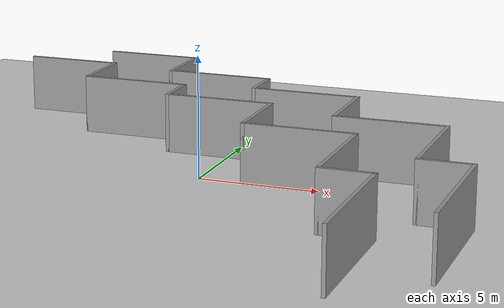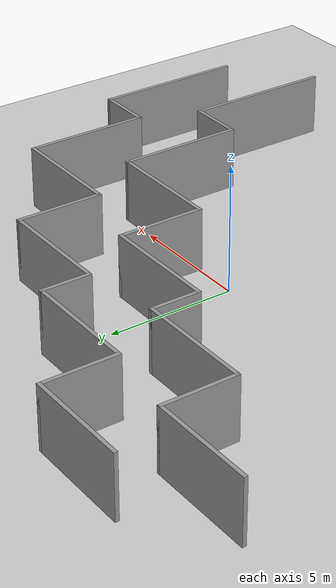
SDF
<sdf version="1.7">
 <world name="default">
  <plugin name="gazebo_ros_state" filename="libgazebo_ros_state.so">
   <ros><namespace>/test</namespace><argument>model_states:=model_states_demo</argument></ros>
   <update_rate>1.0</update_rate>
  </plugin>
  <light name="sun" type="directional">
   <pose>0 0 10 0 -0 0</pose>
   <diffuse>0.8 0.8 0.8 1</diffuse>
   <specular>0.2 0.2 0.2 1</specular>
   <attenuation>
    <range>1000</range>
    <constant>0.9</constant>
    <linear>0.01</linear>
    <quadratic>0.001</quadratic>
   </attenuation>
   <direction>-0.5 0.1 -0.9</direction>
   <spot><inner_angle>0</inner_angle><outer_angle>0</outer_angle><falloff>0</falloff></spot>
  </light>
  <model name="ground_plane">
   <static>1</static>
   <link name="link">
    <collision name="collision">
     <geometry><plane><normal>0 0 1</normal><size>100 100</size></plane></geometry>
     <surface><friction><ode><mu>100</mu><mu2>50</mu2></ode></friction></surface>
    </collision>
    <visual name="visual">
     <cast_shadows>0</cast_shadows>
     <geometry><plane><normal>0 0 1</normal><size>100 100</size></plane></geometry>
     <material>
      <script>
       <uri>model://media/materials/scripts/</uri>
       <uri>model://media/materials/textures/</uri>
       <name>Gazebo/Grey</name>
      </script>
     </material>
    </visual>
   </link>
  </model>
  <gravity>0 0 -9.8</gravity>
  <magnetic_field>6e-06 2.3e-05 -4.2e-05</magnetic_field>
  <atmosphere type="adiabatic"/>
  <physics type="ode">
   <max_step_size>0.001</max_step_size>
   <real_time_factor>1</real_time_factor>
   <real_time_update_rate>1000</real_time_update_rate>
  </physics>
  <scene><ambient>0.4 0.4 0.4 1</ambient><background>0.7 0.7 0.7 1</background><shadows>1</shadows></scene>
  <spherical_coordinates>
   <surface_model>EARTH_WGS84</surface_model>
   <latitude_deg>0</latitude_deg>
   <longitude_deg>0</longitude_deg>
   <elevation>0</elevation>
   <heading_deg>0</heading_deg>
  </spherical_coordinates>
  <model name="zigzag_wall_0_clone">
   <pose>1.59904 0.953678 0 0 -0 0</pose>
   <link name="Wall_10">
    <collision name="Wall_10_Collision">
     <geometry><box><size>4.25 0.15 2.5</size></box></geometry>
     <pose>0 0 1.25 0 -0 0</pose>
    </collision>
    <visual name="Wall_10_Visual">
     <pose>0 0 1.25 0 -0 0</pose>
     <geometry><box><size>4.25 0.15 2.5</size></box></geometry>
     <material>
      <script>
       <uri>model://media/materials/scripts/</uri>
       <uri>model://media/materials/textures/</uri>
       <name>Gazebo/Grey</name>
      </script>
      <ambient>1 1 1 1</ambient>
     </material>
     <meta><layer>0</layer></meta>
    </visual>
    <pose>-7.95 9.375 0 0 -0 0</pose>
   </link>
   <link name="Wall_12">
    <collision name="Wall_12_Collision">
     <geometry><box><size>3 0.15 2.5</size></box></geometry>
     <pose>0 0 1.25 0 -0 0</pose>
    </collision>
    <visual name="Wall_12_Visual">
     <pose>0 0 1.25 0 -0 0</pose>
     <geometry><box><size>3 0.15 2.5</size></box></geometry>
     <material>
      <script>
       <uri>model://media/materials/scripts/</uri>
       <uri>model://media/materials/textures/</uri>
       <name>Gazebo/Grey</name>
      </script>
      <ambient>1 1 1 1</ambient>
     </material>
     <meta><layer>0</layer></meta>
    </visual>
    <pose>-5.9 7.95 0 0 -0 -1.5708</pose>
   </link>
   <link name="Wall_13">
    <collision name="Wall_13_Collision">
     <geometry><box><size>4.75 0.15 2.5</size></box></geometry>
     <pose>0 0 1.25 0 -0 0</pose>
    </collision>
    <visual name="Wall_13_Visual">
     <pose>0 0 1.25 0 -0 0</pose>
     <geometry><box><size>4.75 0.15 2.5</size></box></geometry>
     <material>
      <script>
       <uri>model://media/materials/scripts/</uri>
       <uri>model://media/materials/textures/</uri>
       <name>Gazebo/Grey</name>
      </script>
      <ambient>1 1 1 1</ambient>
     </material>
     <meta><layer>0</layer></meta>
    </visual>
    <pose>-3.6 6.525 0 0 -0 0</pose>
   </link>
   <link name="Wall_14">
    <collision name="Wall_14_Collision">
     <geometry><box><size>2 0.15 2.5</size></box></geometry>
     <pose>0 0 1.25 0 -0 0</pose>
    </collision>
    <visual name="Wall_14_Visual">
     <pose>0 0 1.25 0 -0 0</pose>
     <geometry><box><size>2 0.15 2.5</size></box></geometry>
     <material>
      <script>
       <uri>model://media/materials/scripts/</uri>
       <uri>model://media/materials/textures/</uri>
       <name>Gazebo/Grey</name>
      </script>
      <ambient>1 1 1 1</ambient>
     </material>
     <meta><layer>0</layer></meta>
    </visual>
    <pose>-1.3 5.6 0 0 -0 -1.5708</pose>
   </link>
   <link name="Wall_15">
    <collision name="Wall_15_Collision">
     <geometry><box><size>4.75 0.15 2.5</size></box></geometry>
     <pose>0 0 1.25 0 -0 0</pose>
    </collision>
    <visual name="Wall_15_Visual">
     <pose>0 0 1.25 0 -0 0</pose>
     <geometry><box><size>4.75 0.15 2.5</size></box></geometry>
     <material>
      <script>
       <uri>model://media/materials/scripts/</uri>
       <uri>model://media/materials/textures/</uri>
       <name>Gazebo/Grey</name>
      </script>
      <ambient>1 1 1 1</ambient>
     </material>
     <meta><layer>0</layer></meta>
    </visual>
    <pose>0.999999 4.675 0 0 -0 0</pose>
   </link>
   <link name="Wall_16">
    <collision name="Wall_16_Collision">
     <geometry><box><size>3.5 0.15 2.5</size></box></geometry>
     <pose>0 0 1.25 0 -0 0</pose>
    </collision>
    <visual name="Wall_16_Visual">
     <pose>0 0 1.25 0 -0 0</pose>
     <geometry><box><size>3.5 0.15 2.5</size></box></geometry>
     <material>
      <script>
       <uri>model://media/materials/scripts/</uri>
       <uri>model://media/materials/textures/</uri>
       <name>Gazebo/Grey</name>
      </script>
      <ambient>1 1 1 1</ambient>
     </material>
     <meta><layer>0</layer></meta>
    </visual>
    <pose>3.3 3 0 0 -0 -1.5708</pose>
   </link>
   <link name="Wall_17">
    <collision name="Wall_17_Collision">
     <geometry><box><size>4.75 0.15 2.5</size></box></geometry>
     <pose>0 0 1.25 0 -0 0</pose>
    </collision>
    <visual name="Wall_17_Visual">
     <pose>0 0 1.25 0 -0 0</pose>
     <geometry><box><size>4.75 0.15 2.5</size></box></geometry>
     <material>
      <script>
       <uri>model://media/materials/scripts/</uri>
       <uri>model://media/materials/textures/</uri>
       <name>Gazebo/Grey</name>
      </script>
      <ambient>1 1 1 1</ambient>
     </material>
     <meta><layer>0</layer></meta>
    </visual>
    <pose>5.6 1.325 0 0 -0 0</pose>
   </link>
   <link name="Wall_18">
    <collision name="Wall_18_Collision">
     <geometry><box><size>5 0.15 2.5</size></box></geometry>
     <pose>0 0 1.25 0 -0 0</pose>
    </collision>
    <visual name="Wall_18_Visual">
     <pose>0 0 1.25 0 -0 0</pose>
     <geometry><box><size>5 0.15 2.5</size></box></geometry>
     <material>
      <script>
       <uri>model://media/materials/scripts/</uri>
       <uri>model://media/materials/textures/</uri>
       <name>Gazebo/Grey</name>
      </script>
      <ambient>1 1 1 1</ambient>
     </material>
     <meta><layer>0</layer></meta>
    </visual>
    <pose>7.9 -1.1 0 0 -0 -1.5708</pose>
   </link>
   <link name="Wall_20">
    <collision name="Wall_20_Collision">
     <geometry><box><size>2.25 0.15 2.5</size></box></geometry>
     <pose>0 0 1.25 0 -0 0</pose>
    </collision>
    <visual name="Wall_20_Visual">
     <pose>0 0 1.25 0 -0 0</pose>
     <geometry><box><size>2.25 0.15 2.5</size></box></geometry>
     <material>
      <script>
       <uri>model://media/materials/scripts/</uri>
       <uri>model://media/materials/textures/</uri>
       <name>Gazebo/Grey</name>
      </script>
      <ambient>1 1 1 1</ambient>
     </material>
     <meta><layer>0</layer></meta>
    </visual>
    <pose>8.95 -3.525 0 0 -0 0</pose>
   </link>
   <link name="Wall_21">
    <collision name="Wall_21_Collision">
     <geometry><box><size>6 0.15 2.5</size></box></geometry>
     <pose>0 0 1.25 0 -0 0</pose>
    </collision>
    <visual name="Wall_21_Visual">
     <pose>0 0 1.25 0 -0 0</pose>
     <geometry><box><size>6 0.15 2.5</size></box></geometry>
     <material>
      <script>
       <uri>model://media/materials/scripts/</uri>
       <uri>model://media/materials/textures/</uri>
       <name>Gazebo/Grey</name>
      </script>
      <ambient>1 1 1 1</ambient>
     </material>
     <meta><layer>0</layer></meta>
    </visual>
    <pose>10 -6.45 0 0 -0 -1.5708</pose>
   </link>
   <static>1</static>
  </model>
  <model name="zigzag_wall_0_clone_clone">
   <pose>-1.41252 -1.37149 0 0 -0 0</pose>
   <link name="Wall_10">
    <collision name="Wall_10_Collision">
     <geometry><box><size>4.25 0.15 2.5</size></box></geometry>
     <pose>0 0 1.25 0 -0 0</pose>
    </collision>
    <visual name="Wall_10_Visual">
     <pose>0 0 1.25 0 -0 0</pose>
     <geometry><box><size>4.25 0.15 2.5</size></box></geometry>
     <material>
      <script>
       <uri>model://media/materials/scripts/</uri>
       <uri>model://media/materials/textures/</uri>
       <name>Gazebo/Grey</name>
      </script>
      <ambient>1 1 1 1</ambient>
     </material>
     <meta><layer>0</layer></meta>
    </visual>
    <pose>-7.95 9.375 0 0 -0 0</pose>
   </link>
   <link name="Wall_12">
    <collision name="Wall_12_Collision">
     <geometry><box><size>3 0.15 2.5</size></box></geometry>
     <pose>0 0 1.25 0 -0 0</pose>
    </collision>
    <visual name="Wall_12_Visual">
     <pose>0 0 1.25 0 -0 0</pose>
     <geometry><box><size>3 0.15 2.5</size></box></geometry>
     <material>
      <script>
       <uri>model://media/materials/scripts/</uri>
       <uri>model://media/materials/textures/</uri>
       <name>Gazebo/Grey</name>
      </script>
      <ambient>1 1 1 1</ambient>
     </material>
     <meta><layer>0</layer></meta>
    </visual>
    <pose>-5.9 7.95 0 0 -0 -1.5708</pose>
   </link>
   <link name="Wall_13">
    <collision name="Wall_13_Collision">
     <geometry><box><size>4.75 0.15 2.5</size></box></geometry>
     <pose>0 0 1.25 0 -0 0</pose>
    </collision>
    <visual name="Wall_13_Visual">
     <pose>0 0 1.25 0 -0 0</pose>
     <geometry><box><size>4.75 0.15 2.5</size></box></geometry>
     <material>
      <script>
       <uri>model://media/materials/scripts/</uri>
       <uri>model://media/materials/textures/</uri>
       <name>Gazebo/Grey</name>
      </script>
      <ambient>1 1 1 1</ambient>
     </material>
     <meta><layer>0</layer></meta>
    </visual>
    <pose>-3.6 6.525 0 0 -0 0</pose>
   </link>
   <link name="Wall_14">
    <collision name="Wall_14_Collision">
     <geometry><box><size>2 0.15 2.5</size></box></geometry>
     <pose>0 0 1.25 0 -0 0</pose>
    </collision>
    <visual name="Wall_14_Visual">
     <pose>0 0 1.25 0 -0 0</pose>
     <geometry><box><size>2 0.15 2.5</size></box></geometry>
     <material>
      <script>
       <uri>model://media/materials/scripts/</uri>
       <uri>model://media/materials/textures/</uri>
       <name>Gazebo/Grey</name>
      </script>
      <ambient>1 1 1 1</ambient>
     </material>
     <meta><layer>0</layer></meta>
    </visual>
    <pose>-1.3 5.6 0 0 -0 -1.5708</pose>
   </link>
   <link name="Wall_15">
    <collision name="Wall_15_Collision">
     <geometry><box><size>4.75 0.15 2.5</size></box></geometry>
     <pose>0 0 1.25 0 -0 0</pose>
    </collision>
    <visual name="Wall_15_Visual">
     <pose>0 0 1.25 0 -0 0</pose>
     <geometry><box><size>4.75 0.15 2.5</size></box></geometry>
     <material>
      <script>
       <uri>model://media/materials/scripts/</uri>
       <uri>model://media/materials/textures/</uri>
       <name>Gazebo/Grey</name>
      </script>
      <ambient>1 1 1 1</ambient>
     </material>
     <meta><layer>0</layer></meta>
    </visual>
    <pose>0.999999 4.675 0 0 -0 0</pose>
   </link>
   <link name="Wall_16">
    <collision name="Wall_16_Collision">
     <geometry><box><size>3.5 0.15 2.5</size></box></geometry>
     <pose>0 0 1.25 0 -0 0</pose>
    </collision>
    <visual name="Wall_16_Visual">
     <pose>0 0 1.25 0 -0 0</pose>
     <geometry><box><size>3.5 0.15 2.5</size></box></geometry>
     <material>
      <script>
       <uri>model://media/materials/scripts/</uri>
       <uri>model://media/materials/textures/</uri>
       <name>Gazebo/Grey</name>
      </script>
      <ambient>1 1 1 1</ambient>
     </material>
     <meta><layer>0</layer></meta>
    </visual>
    <pose>3.3 3 0 0 -0 -1.5708</pose>
   </link>
   <link name="Wall_17">
    <collision name="Wall_17_Collision">
     <geometry><box><size>4.75 0.15 2.5</size></box></geometry>
     <pose>0 0 1.25 0 -0 0</pose>
    </collision>
    <visual name="Wall_17_Visual">
     <pose>0 0 1.25 0 -0 0</pose>
     <geometry><box><size>4.75 0.15 2.5</size></box></geometry>
     <material>
      <script>
       <uri>model://media/materials/scripts/</uri>
       <uri>model://media/materials/textures/</uri>
       <name>Gazebo/Grey</name>
      </script>
      <ambient>1 1 1 1</ambient>
     </material>
     <meta><layer>0</layer></meta>
    </visual>
    <pose>5.6 1.325 0 0 -0 0</pose>
   </link>
   <link name="Wall_18">
    <collision name="Wall_18_Collision">
     <geometry><box><size>5 0.15 2.5</size></box></geometry>
     <pose>0 0 1.25 0 -0 0</pose>
    </collision>
    <visual name="Wall_18_Visual">
     <pose>0 0 1.25 0 -0 0</pose>
     <geometry><box><size>5 0.15 2.5</size></box></geometry>
     <material>
      <script>
       <uri>model://media/materials/scripts/</uri>
       <uri>model://media/materials/textures/</uri>
       <name>Gazebo/Grey</name>
      </script>
      <ambient>1 1 1 1</ambient>
     </material>
     <meta><layer>0</layer></meta>
    </visual>
    <pose>7.9 -1.1 0 0 -0 -1.5708</pose>
   </link>
   <link name="Wall_20">
    <collision name="Wall_20_Collision">
     <geometry><box><size>2.25 0.15 2.5</size></box></geometry>
     <pose>0 0 1.25 0 -0 0</pose>
    </collision>
    <visual name="Wall_20_Visual">
     <pose>0 0 1.25 0 -0 0</pose>
     <geometry><box><size>2.25 0.15 2.5</size></box></geometry>
     <material>
      <script>
       <uri>model://media/materials/scripts/</uri>
       <uri>model://media/materials/textures/</uri>
       <name>Gazebo/Grey</name>
      </script>
      <ambient>1 1 1 1</ambient>
     </material>
     <meta><layer>0</layer></meta>
    </visual>
    <pose>8.95 -3.525 0 0 -0 0</pose>
   </link>
   <link name="Wall_21">
    <collision name="Wall_21_Collision">
     <geometry><box><size>6 0.15 2.5</size></box></geometry>
     <pose>0 0 1.25 0 -0 0</pose>
    </collision>
    <visual name="Wall_21_Visual">
     <pose>0 0 1.25 0 -0 0</pose>
     <geometry><box><size>6 0.15 2.5</size></box></geometry>
     <material>
      <script>
       <uri>model://media/materials/scripts/</uri>
       <uri>model://media/materials/textures/</uri>
       <name>Gazebo/Grey</name>
      </script>
      <ambient>1 1 1 1</ambient>
     </material>
     <meta><layer>0</layer></meta>
    </visual>
    <pose>10 -6.45 0 0 -0 -1.5708</pose>
   </link>
   <static>1</static>
  </model>
 </world>
</sdf>
